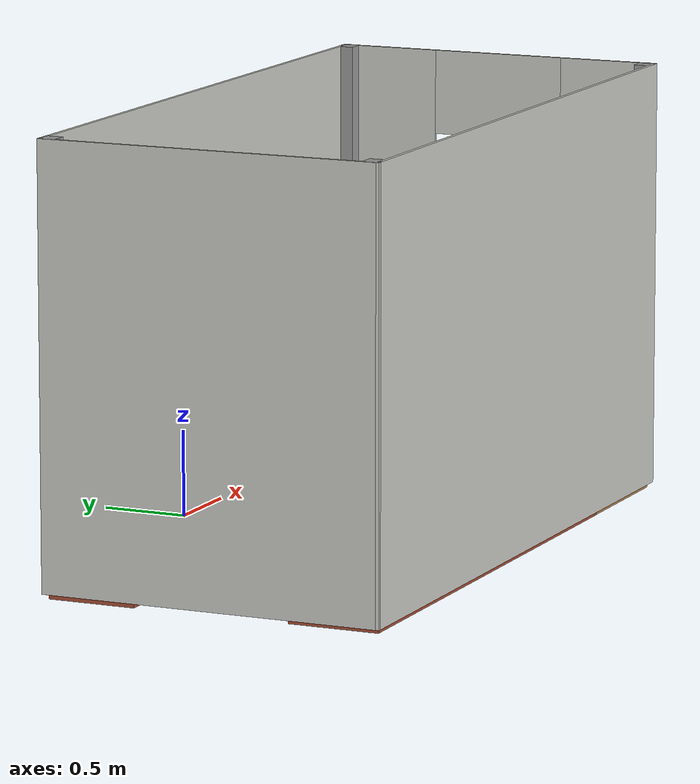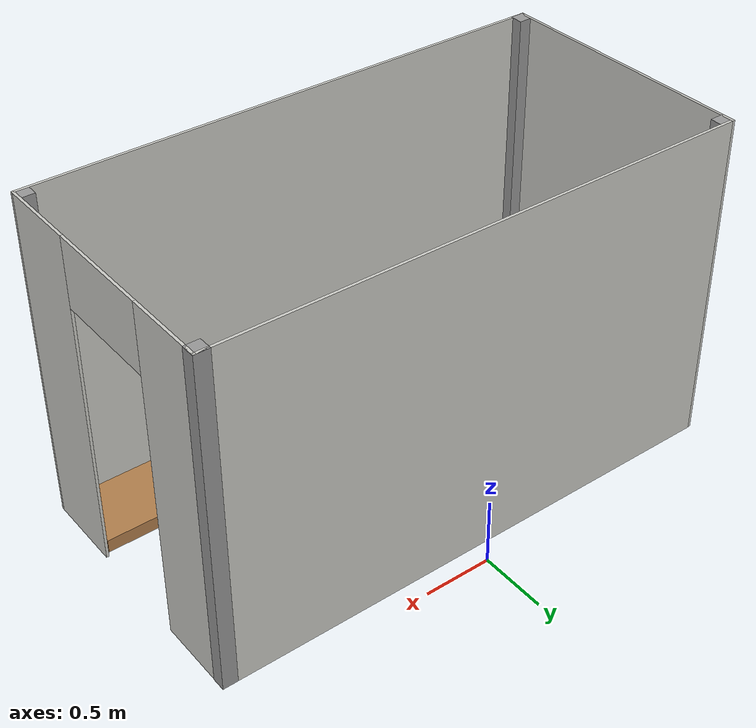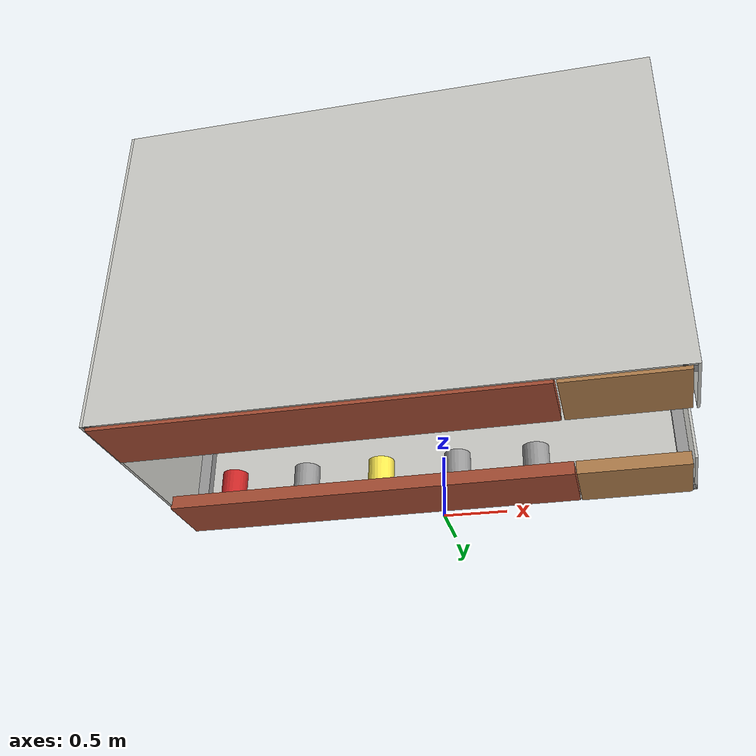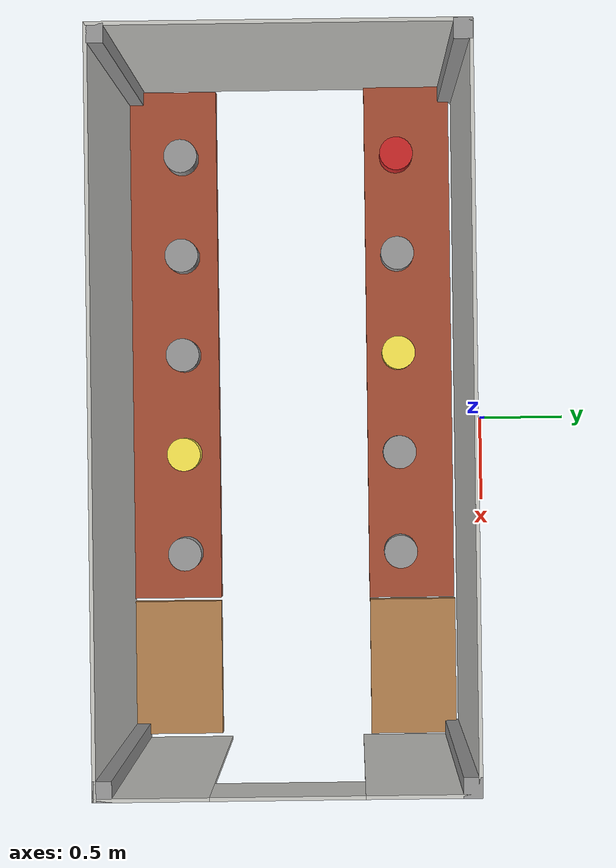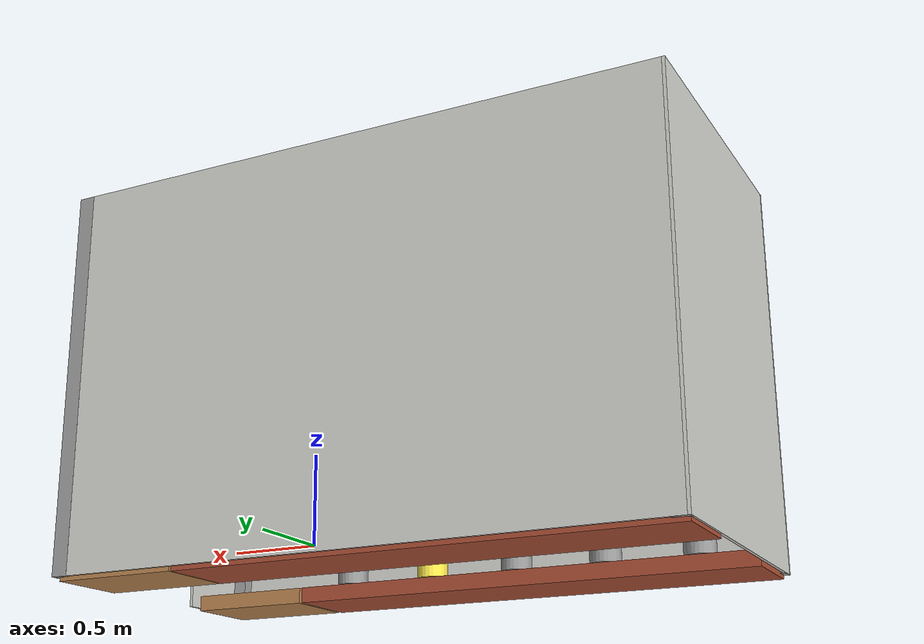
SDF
<?xml version='1.0'?>
<sdf version='1.7'>
  <model name='Greenhouse'>
    <link name='Wall_0'>
      <pose>-0.048 -0.148439 0 0 -0 0</pose>
      <self_collide>0</self_collide>
      <enable_wind>0</enable_wind>
      <kinematic>0</kinematic>
      <visual name='Wall_0_Visual'>
        <pose>0 0 1.25 0 -0 0</pose>
        <geometry>
          <box>
            <size>4 0.02 2.5</size>
          </box>
        </geometry>
        <material>
          <script>
            <uri>file://media/materials/scripts/gazebo.material</uri>
            <name>Gazebo/CeilingTiled</name>
          </script>
          <ambient>1 1 1 1</ambient>
          <shader type='pixel'/>
        </material>
        <meta>
          <layer>0</layer>
        </meta>
        <transparency>0</transparency>
        <cast_shadows>1</cast_shadows>
      </visual>
      <collision name='Wall_0_Collision'>
        <laser_retro>0</laser_retro>
        <max_contacts>10</max_contacts>
        <pose>0 0 1.25 0 -0 0</pose>
        <geometry>
          <box>
            <size>4 0.02 2.5</size>
          </box>
        </geometry>
        <surface>
          <friction>
            <ode>
              <mu>1</mu>
              <mu2>1</mu2>
              <fdir1>0 0 0</fdir1>
              <slip1>0</slip1>
              <slip2>0</slip2>
            </ode>
            <torsional>
              <coefficient>1</coefficient>
              <patch_radius>0</patch_radius>
              <surface_radius>0</surface_radius>
              <use_patch_radius>1</use_patch_radius>
              <ode>
                <slip>0</slip>
              </ode>
            </torsional>
          </friction>
          <bounce>
            <restitution_coefficient>0</restitution_coefficient>
            <threshold>1e+06</threshold>
          </bounce>
          <contact>
            <collide_without_contact>0</collide_without_contact>
            <collide_without_contact_bitmask>1</collide_without_contact_bitmask>
            <collide_bitmask>1</collide_bitmask>
            <ode>
              <soft_cfm>0</soft_cfm>
              <soft_erp>0.2</soft_erp>
              <kp>1e+13</kp>
              <kd>1</kd>
              <max_vel>0.01</max_vel>
              <min_depth>0</min_depth>
            </ode>
            <bullet>
              <split_impulse>1</split_impulse>
              <split_impulse_penetration_threshold>-0.01</split_impulse_penetration_threshold>
              <soft_cfm>0</soft_cfm>
              <soft_erp>0.2</soft_erp>
              <kp>1e+13</kp>
              <kd>1</kd>
            </bullet>
          </contact>
        </surface>
      </collision>
    </link>
    <link name='Wall_1'>
      <pose>1.942 -1.13844 0 0 0 -1.5708</pose>
      <self_collide>0</self_collide>
      <enable_wind>0</enable_wind>
      <kinematic>0</kinematic>
      <visual name='Wall_1_Visual_1'>
        <pose>0.699876 0 1.25 0 -0 0</pose>
        <geometry>
          <box>
            <size>0.600248 0.02 2.5</size>
          </box>
        </geometry>
        <material>
          <script>
            <uri>file://media/materials/scripts/gazebo.material</uri>
            <name>Gazebo/CeilingTiled</name>
          </script>
          <ambient>1 1 1 1</ambient>
          <shader type='pixel'/>
        </material>
        <meta>
          <layer>0</layer>
        </meta>
        <transparency>0</transparency>
        <cast_shadows>1</cast_shadows>
      </visual>
      <visual name='Wall_1_Visual_2'>
        <pose>-0.000248 0 2.25 0 -0 0</pose>
        <geometry>
          <box>
            <size>0.8 0.02 0.5</size>
          </box>
        </geometry>
        <material>
          <script>
            <uri>file://media/materials/scripts/gazebo.material</uri>
            <name>Gazebo/CeilingTiled</name>
          </script>
          <ambient>1 1 1 1</ambient>
          <shader type='pixel'/>
        </material>
        <meta>
          <layer>0</layer>
        </meta>
        <transparency>0</transparency>
        <cast_shadows>1</cast_shadows>
      </visual>
      <visual name='Wall_1_Visual_0'>
        <pose>-0.700124 0 1.25 0 -0 0</pose>
        <geometry>
          <box>
            <size>0.599752 0.02 2.5</size>
          </box>
        </geometry>
        <material>
          <script>
            <uri>file://media/materials/scripts/gazebo.material</uri>
            <name>Gazebo/CeilingTiled</name>
          </script>
          <ambient>1 1 1 1</ambient>
          <shader type='pixel'/>
        </material>
        <meta>
          <layer>0</layer>
        </meta>
        <transparency>0</transparency>
        <cast_shadows>1</cast_shadows>
      </visual>
      <collision name='Wall_1_Collision_0'>
        <laser_retro>0</laser_retro>
        <max_contacts>10</max_contacts>
        <pose>-0.700124 0 1.25 0 -0 0</pose>
        <geometry>
          <box>
            <size>0.599752 0.02 2.5</size>
          </box>
        </geometry>
        <surface>
          <friction>
            <ode>
              <mu>1</mu>
              <mu2>1</mu2>
              <fdir1>0 0 0</fdir1>
              <slip1>0</slip1>
              <slip2>0</slip2>
            </ode>
            <torsional>
              <coefficient>1</coefficient>
              <patch_radius>0</patch_radius>
              <surface_radius>0</surface_radius>
              <use_patch_radius>1</use_patch_radius>
              <ode>
                <slip>0</slip>
              </ode>
            </torsional>
          </friction>
          <bounce>
            <restitution_coefficient>0</restitution_coefficient>
            <threshold>1e+06</threshold>
          </bounce>
          <contact>
            <collide_without_contact>0</collide_without_contact>
            <collide_without_contact_bitmask>1</collide_without_contact_bitmask>
            <collide_bitmask>1</collide_bitmask>
            <ode>
              <soft_cfm>0</soft_cfm>
              <soft_erp>0.2</soft_erp>
              <kp>1e+13</kp>
              <kd>1</kd>
              <max_vel>0.01</max_vel>
              <min_depth>0</min_depth>
            </ode>
            <bullet>
              <split_impulse>1</split_impulse>
              <split_impulse_penetration_threshold>-0.01</split_impulse_penetration_threshold>
              <soft_cfm>0</soft_cfm>
              <soft_erp>0.2</soft_erp>
              <kp>1e+13</kp>
              <kd>1</kd>
            </bullet>
          </contact>
        </surface>
      </collision>
      <collision name='Wall_1_Collision_1'>
        <laser_retro>0</laser_retro>
        <max_contacts>10</max_contacts>
        <pose>0.699876 0 1.25 0 -0 0</pose>
        <geometry>
          <box>
            <size>0.600248 0.02 2.5</size>
          </box>
        </geometry>
        <surface>
          <friction>
            <ode>
              <mu>1</mu>
              <mu2>1</mu2>
              <fdir1>0 0 0</fdir1>
              <slip1>0</slip1>
              <slip2>0</slip2>
            </ode>
            <torsional>
              <coefficient>1</coefficient>
              <patch_radius>0</patch_radius>
              <surface_radius>0</surface_radius>
              <use_patch_radius>1</use_patch_radius>
              <ode>
                <slip>0</slip>
              </ode>
            </torsional>
          </friction>
          <bounce>
            <restitution_coefficient>0</restitution_coefficient>
            <threshold>1e+06</threshold>
          </bounce>
          <contact>
            <collide_without_contact>0</collide_without_contact>
            <collide_without_contact_bitmask>1</collide_without_contact_bitmask>
            <collide_bitmask>1</collide_bitmask>
            <ode>
              <soft_cfm>0</soft_cfm>
              <soft_erp>0.2</soft_erp>
              <kp>1e+13</kp>
              <kd>1</kd>
              <max_vel>0.01</max_vel>
              <min_depth>0</min_depth>
            </ode>
            <bullet>
              <split_impulse>1</split_impulse>
              <split_impulse_penetration_threshold>-0.01</split_impulse_penetration_threshold>
              <soft_cfm>0</soft_cfm>
              <soft_erp>0.2</soft_erp>
              <kp>1e+13</kp>
              <kd>1</kd>
            </bullet>
          </contact>
        </surface>
      </collision>
      <collision name='Wall_1_Collision_2'>
        <laser_retro>0</laser_retro>
        <max_contacts>10</max_contacts>
        <pose>-0.000248 0 2.25 0 -0 0</pose>
        <geometry>
          <box>
            <size>0.8 0.02 0.5</size>
          </box>
        </geometry>
        <surface>
          <friction>
            <ode>
              <mu>1</mu>
              <mu2>1</mu2>
              <fdir1>0 0 0</fdir1>
              <slip1>0</slip1>
              <slip2>0</slip2>
            </ode>
            <torsional>
              <coefficient>1</coefficient>
              <patch_radius>0</patch_radius>
              <surface_radius>0</surface_radius>
              <use_patch_radius>1</use_patch_radius>
              <ode>
                <slip>0</slip>
              </ode>
            </torsional>
          </friction>
          <bounce>
            <restitution_coefficient>0</restitution_coefficient>
            <threshold>1e+06</threshold>
          </bounce>
          <contact>
            <collide_without_contact>0</collide_without_contact>
            <collide_without_contact_bitmask>1</collide_without_contact_bitmask>
            <collide_bitmask>1</collide_bitmask>
            <ode>
              <soft_cfm>0</soft_cfm>
              <soft_erp>0.2</soft_erp>
              <kp>1e+13</kp>
              <kd>1</kd>
              <max_vel>0.01</max_vel>
              <min_depth>0</min_depth>
            </ode>
            <bullet>
              <split_impulse>1</split_impulse>
              <split_impulse_penetration_threshold>-0.01</split_impulse_penetration_threshold>
              <soft_cfm>0</soft_cfm>
              <soft_erp>0.2</soft_erp>
              <kp>1e+13</kp>
              <kd>1</kd>
            </bullet>
          </contact>
        </surface>
      </collision>
    </link>
    <link name='Wall_18'>
      <pose>-0.468315 -1.85777 0 0 -0 3.14159</pose>
      <self_collide>0</self_collide>
      <enable_wind>0</enable_wind>
      <kinematic>0</kinematic>
      <gravity>1</gravity>
      <inertial>
        <mass>0.836289</mass>
        <pose>0 0 0 0 -0 0</pose>
        <inertia>
          <ixx>0.0201198</ixx>
          <ixy>0</ixy>
          <ixz>0</ixz>
          <iyy>0.665601</iyy>
          <iyz>0</iyz>
          <izz>0.684327</izz>
        </inertia>
      </inertial>
      <visual name='Wall_18_Visual'>
        <pose>0 0 0.025 0 -0 0</pose>
        <geometry>
          <box>
            <size>3.08881 0.527921 0.1</size>
          </box>
        </geometry>
        <material>
          <script>
            <uri>file://media/materials/scripts/gazebo.material</uri>
            <name>Gazebo/Bricks</name>
          </script>
          <ambient>0.996 0.475 0.02 1</ambient>
          <shader type='pixel'>
            <normal_map>__default__</normal_map>
          </shader>
          <diffuse>1 1 1 1</diffuse>
          <specular>0.2 0.2 0.2 1</specular>
          <emissive>0 0 0 1</emissive>
        </material>
        <meta>
          <layer>0</layer>
        </meta>
        <transparency>0</transparency>
        <cast_shadows>1</cast_shadows>
      </visual>
      <collision name='Wall_18_Collision'>
        <laser_retro>0</laser_retro>
        <max_contacts>10</max_contacts>
        <pose>0 0 0.025 0 -0 0</pose>
        <geometry>
          <box>
            <size>3.08881 0.527921 0.1</size>
          </box>
        </geometry>
        <surface>
          <friction>
            <ode>
              <mu>1</mu>
              <mu2>1</mu2>
              <fdir1>0 0 0</fdir1>
              <slip1>0</slip1>
              <slip2>0</slip2>
            </ode>
            <torsional>
              <coefficient>1</coefficient>
              <patch_radius>0</patch_radius>
              <surface_radius>0</surface_radius>
              <use_patch_radius>1</use_patch_radius>
              <ode>
                <slip>0</slip>
              </ode>
            </torsional>
          </friction>
          <bounce>
            <restitution_coefficient>0</restitution_coefficient>
            <threshold>1e+06</threshold>
          </bounce>
          <contact>
            <collide_without_contact>0</collide_without_contact>
            <collide_without_contact_bitmask>1</collide_without_contact_bitmask>
            <collide_bitmask>1</collide_bitmask>
            <ode>
              <soft_cfm>0</soft_cfm>
              <soft_erp>0.2</soft_erp>
              <kp>1e+13</kp>
              <kd>1</kd>
              <max_vel>0.01</max_vel>
              <min_depth>0</min_depth>
            </ode>
            <bullet>
              <split_impulse>1</split_impulse>
              <split_impulse_penetration_threshold>-0.01</split_impulse_penetration_threshold>
              <soft_cfm>0</soft_cfm>
              <soft_erp>0.2</soft_erp>
              <kp>1e+13</kp>
              <kd>1</kd>
            </bullet>
          </contact>
        </surface>
      </collision>
    </link>
    <link name='Wall_2'>
      <pose>-0.048 -2.12844 0 0 -0 3.14159</pose>
      <self_collide>0</self_collide>
      <enable_wind>0</enable_wind>
      <kinematic>0</kinematic>
      <visual name='Wall_2_Visual'>
        <pose>0 0 1.25 0 -0 0</pose>
        <geometry>
          <box>
            <size>4 0.02 2.5</size>
          </box>
        </geometry>
        <material>
          <script>
            <uri>file://media/materials/scripts/gazebo.material</uri>
            <name>Gazebo/CeilingTiled</name>
          </script>
          <ambient>1 1 1 1</ambient>
          <shader type='pixel'/>
        </material>
        <meta>
          <layer>0</layer>
        </meta>
        <transparency>0</transparency>
        <cast_shadows>1</cast_shadows>
      </visual>
      <collision name='Wall_2_Collision'>
        <laser_retro>0</laser_retro>
        <max_contacts>10</max_contacts>
        <pose>0 0 1.25 0 -0 0</pose>
        <geometry>
          <box>
            <size>4 0.02 2.5</size>
          </box>
        </geometry>
        <surface>
          <friction>
            <ode>
              <mu>1</mu>
              <mu2>1</mu2>
              <fdir1>0 0 0</fdir1>
              <slip1>0</slip1>
              <slip2>0</slip2>
            </ode>
            <torsional>
              <coefficient>1</coefficient>
              <patch_radius>0</patch_radius>
              <surface_radius>0</surface_radius>
              <use_patch_radius>1</use_patch_radius>
              <ode>
                <slip>0</slip>
              </ode>
            </torsional>
          </friction>
          <bounce>
            <restitution_coefficient>0</restitution_coefficient>
            <threshold>1e+06</threshold>
          </bounce>
          <contact>
            <collide_without_contact>0</collide_without_contact>
            <collide_without_contact_bitmask>1</collide_without_contact_bitmask>
            <collide_bitmask>1</collide_bitmask>
            <ode>
              <soft_cfm>0</soft_cfm>
              <soft_erp>0.2</soft_erp>
              <kp>1e+13</kp>
              <kd>1</kd>
              <max_vel>0.01</max_vel>
              <min_depth>0</min_depth>
            </ode>
            <bullet>
              <split_impulse>1</split_impulse>
              <split_impulse_penetration_threshold>-0.01</split_impulse_penetration_threshold>
              <soft_cfm>0</soft_cfm>
              <soft_erp>0.2</soft_erp>
              <kp>1e+13</kp>
              <kd>1</kd>
            </bullet>
          </contact>
        </surface>
      </collision>
    </link>
    <link name='Wall_20'>
      <pose>-0.474215 -0.432825 0 0 -0 3.14159</pose>
      <self_collide>0</self_collide>
      <enable_wind>0</enable_wind>
      <kinematic>0</kinematic>
      <gravity>1</gravity>
      <inertial>
        <mass>0.824884</mass>
        <pose>0 0 0 0 -0 0</pose>
        <inertia>
          <ixx>0.0189166</ixx>
          <ixy>0</ixy>
          <ixz>0</ixz>
          <iyy>0.671272</iyy>
          <iyz>0</iyz>
          <izz>0.688814</izz>
        </inertia>
      </inertial>
      <visual name='Wall_20_Visual'>
        <pose>0 0 0.025 0 -0 0</pose>
        <geometry>
          <box>
            <size>3.12335 0.514965 0.1</size>
          </box>
        </geometry>
        <material>
          <script>
            <uri>file://media/materials/scripts/gazebo.material</uri>
            <name>Gazebo/Bricks</name>
          </script>
          <ambient>1 1 1 1</ambient>
          <shader type='pixel'>
            <normal_map>__default__</normal_map>
          </shader>
          <diffuse>1 1 1 1</diffuse>
          <specular>0.2 0.2 0.2 1</specular>
          <emissive>0 0 0 1</emissive>
        </material>
        <meta>
          <layer>0</layer>
        </meta>
        <transparency>0</transparency>
        <cast_shadows>1</cast_shadows>
      </visual>
      <collision name='Wall_20_Collision'>
        <laser_retro>0</laser_retro>
        <max_contacts>10</max_contacts>
        <pose>0 0 0.025 0 -0 0</pose>
        <geometry>
          <box>
            <size>3.12335 0.514965 0.1</size>
          </box>
        </geometry>
        <surface>
          <friction>
            <ode>
              <mu>1</mu>
              <mu2>1</mu2>
              <fdir1>0 0 0</fdir1>
              <slip1>0</slip1>
              <slip2>0</slip2>
            </ode>
            <torsional>
              <coefficient>1</coefficient>
              <patch_radius>0</patch_radius>
              <surface_radius>0</surface_radius>
              <use_patch_radius>1</use_patch_radius>
              <ode>
                <slip>0</slip>
              </ode>
            </torsional>
          </friction>
          <bounce>
            <restitution_coefficient>0</restitution_coefficient>
            <threshold>1e+06</threshold>
          </bounce>
          <contact>
            <collide_without_contact>0</collide_without_contact>
            <collide_without_contact_bitmask>1</collide_without_contact_bitmask>
            <collide_bitmask>1</collide_bitmask>
            <ode>
              <soft_cfm>0</soft_cfm>
              <soft_erp>0.2</soft_erp>
              <kp>1e+13</kp>
              <kd>1</kd>
              <max_vel>0.01</max_vel>
              <min_depth>0</min_depth>
            </ode>
            <bullet>
              <split_impulse>1</split_impulse>
              <split_impulse_penetration_threshold>-0.01</split_impulse_penetration_threshold>
              <soft_cfm>0</soft_cfm>
              <soft_erp>0.2</soft_erp>
              <kp>1e+13</kp>
              <kd>1</kd>
            </bullet>
          </contact>
        </surface>
      </collision>
    </link>
    <link name='Wall_22'>
      <pose>1.508 -0.428972 0 0 -0 3.14159</pose>
      <self_collide>0</self_collide>
      <enable_wind>0</enable_wind>
      <kinematic>0</kinematic>
      <gravity>1</gravity>
      <inertial>
        <mass>0.98097</mass>
        <pose>0 0 0 0 -0 0</pose>
        <inertia>
          <ixx>0.0227787</ixx>
          <ixy>0</ixy>
          <ixz>0</ixz>
          <iyy>0.0554978</iyy>
          <iyz>0</iyz>
          <izz>0.0766416</izz>
        </inertia>
      </inertial>
      <visual name='Wall_22_Visual'>
        <pose>0 0 0.025 0 -0 0</pose>
        <geometry>
          <box>
            <size>0.817859 0.518312 0.1</size>
          </box>
        </geometry>
        <material>
          <script>
            <uri>file://media/materials/scripts/gazebo.material</uri>
            <name>Gazebo/Wood</name>
          </script>
          <ambient>1 1 1 1</ambient>
          <shader type='pixel'>
            <normal_map>__default__</normal_map>
          </shader>
          <diffuse>1 1 1 1</diffuse>
          <specular>0.2 0.2 0.2 1</specular>
          <emissive>0 0 0 1</emissive>
        </material>
        <meta>
          <layer>0</layer>
        </meta>
        <transparency>0</transparency>
        <cast_shadows>1</cast_shadows>
      </visual>
      <collision name='Wall_22_Collision'>
        <laser_retro>0</laser_retro>
        <max_contacts>10</max_contacts>
        <pose>0 0 0.025 0 -0 0</pose>
        <geometry>
          <box>
            <size>0.817859 0.518312 0.1</size>
          </box>
        </geometry>
        <surface>
          <friction>
            <ode>
              <mu>1</mu>
              <mu2>1</mu2>
              <fdir1>0 0 0</fdir1>
              <slip1>0</slip1>
              <slip2>0</slip2>
            </ode>
            <torsional>
              <coefficient>1</coefficient>
              <patch_radius>0</patch_radius>
              <surface_radius>0</surface_radius>
              <use_patch_radius>1</use_patch_radius>
              <ode>
                <slip>0</slip>
              </ode>
            </torsional>
          </friction>
          <bounce>
            <restitution_coefficient>0</restitution_coefficient>
            <threshold>1e+06</threshold>
          </bounce>
          <contact>
            <collide_without_contact>0</collide_without_contact>
            <collide_without_contact_bitmask>1</collide_without_contact_bitmask>
            <collide_bitmask>1</collide_bitmask>
            <ode>
              <soft_cfm>0</soft_cfm>
              <soft_erp>0.2</soft_erp>
              <kp>1e+13</kp>
              <kd>1</kd>
              <max_vel>0.01</max_vel>
              <min_depth>0</min_depth>
            </ode>
            <bullet>
              <split_impulse>1</split_impulse>
              <split_impulse_penetration_threshold>-0.01</split_impulse_penetration_threshold>
              <soft_cfm>0</soft_cfm>
              <soft_erp>0.2</soft_erp>
              <kp>1e+13</kp>
              <kd>1</kd>
            </bullet>
          </contact>
        </surface>
      </collision>
    </link>
    <link name='Wall_3'>
      <pose>-2.038 -1.13844 0 0 -0 1.5708</pose>
      <self_collide>0</self_collide>
      <enable_wind>0</enable_wind>
      <kinematic>0</kinematic>
      <visual name='Wall_3_Visual'>
        <pose>0 0 1.25 0 -0 0</pose>
        <geometry>
          <box>
            <size>2.00024 0.02 2.5</size>
          </box>
        </geometry>
        <material>
          <script>
            <uri>file://media/materials/scripts/gazebo.material</uri>
            <name>Gazebo/CeilingTiled</name>
          </script>
          <ambient>1 1 1 1</ambient>
          <shader type='pixel'/>
        </material>
        <meta>
          <layer>0</layer>
        </meta>
        <transparency>0</transparency>
        <cast_shadows>1</cast_shadows>
      </visual>
      <collision name='Wall_3_Collision'>
        <laser_retro>0</laser_retro>
        <max_contacts>10</max_contacts>
        <pose>0 0 1.25 0 -0 0</pose>
        <geometry>
          <box>
            <size>2.00024 0.02 2.5</size>
          </box>
        </geometry>
        <surface>
          <friction>
            <ode>
              <mu>1</mu>
              <mu2>1</mu2>
              <fdir1>0 0 0</fdir1>
              <slip1>0</slip1>
              <slip2>0</slip2>
            </ode>
            <torsional>
              <coefficient>1</coefficient>
              <patch_radius>0</patch_radius>
              <surface_radius>0</surface_radius>
              <use_patch_radius>1</use_patch_radius>
              <ode>
                <slip>0</slip>
              </ode>
            </torsional>
          </friction>
          <bounce>
            <restitution_coefficient>0</restitution_coefficient>
            <threshold>1e+06</threshold>
          </bounce>
          <contact>
            <collide_without_contact>0</collide_without_contact>
            <collide_without_contact_bitmask>1</collide_without_contact_bitmask>
            <collide_bitmask>1</collide_bitmask>
            <ode>
              <soft_cfm>0</soft_cfm>
              <soft_erp>0.2</soft_erp>
              <kp>1e+13</kp>
              <kd>1</kd>
              <max_vel>0.01</max_vel>
              <min_depth>0</min_depth>
            </ode>
            <bullet>
              <split_impulse>1</split_impulse>
              <split_impulse_penetration_threshold>-0.01</split_impulse_penetration_threshold>
              <soft_cfm>0</soft_cfm>
              <soft_erp>0.2</soft_erp>
              <kp>1e+13</kp>
              <kd>1</kd>
            </bullet>
          </contact>
        </surface>
      </collision>
    </link>
    <link name='Wall_30'>
      <pose>-1.99166 -2.0858 0 0 -0 0</pose>
      <self_collide>0</self_collide>
      <enable_wind>0</enable_wind>
      <kinematic>0</kinematic>
      <visual name='Wall_30_Visual'>
        <pose>0 0 1.25 0 -0 0</pose>
        <geometry>
          <box>
            <size>0.11 0.1 2.5</size>
          </box>
        </geometry>
        <material>
          <script>
            <uri>file://media/materials/scripts/gazebo.material</uri>
            <name>Gazebo/Grey</name>
          </script>
          <ambient>0.333333 0.341176 0.32549 1</ambient>
          <shader type='pixel'/>
        </material>
        <meta>
          <layer>0</layer>
        </meta>
        <transparency>0</transparency>
        <cast_shadows>1</cast_shadows>
      </visual>
      <collision name='Wall_30_Collision'>
        <laser_retro>0</laser_retro>
        <max_contacts>10</max_contacts>
        <pose>0 0 1.25 0 -0 0</pose>
        <geometry>
          <box>
            <size>0.11 0.1 2.5</size>
          </box>
        </geometry>
        <surface>
          <friction>
            <ode>
              <mu>1</mu>
              <mu2>1</mu2>
              <fdir1>0 0 0</fdir1>
              <slip1>0</slip1>
              <slip2>0</slip2>
            </ode>
            <torsional>
              <coefficient>1</coefficient>
              <patch_radius>0</patch_radius>
              <surface_radius>0</surface_radius>
              <use_patch_radius>1</use_patch_radius>
              <ode>
                <slip>0</slip>
              </ode>
            </torsional>
          </friction>
          <bounce>
            <restitution_coefficient>0</restitution_coefficient>
            <threshold>1e+06</threshold>
          </bounce>
          <contact>
            <collide_without_contact>0</collide_without_contact>
            <collide_without_contact_bitmask>1</collide_without_contact_bitmask>
            <collide_bitmask>1</collide_bitmask>
            <ode>
              <soft_cfm>0</soft_cfm>
              <soft_erp>0.2</soft_erp>
              <kp>1e+13</kp>
              <kd>1</kd>
              <max_vel>0.01</max_vel>
              <min_depth>0</min_depth>
            </ode>
            <bullet>
              <split_impulse>1</split_impulse>
              <split_impulse_penetration_threshold>-0.01</split_impulse_penetration_threshold>
              <soft_cfm>0</soft_cfm>
              <soft_erp>0.2</soft_erp>
              <kp>1e+13</kp>
              <kd>1</kd>
            </bullet>
          </contact>
        </surface>
      </collision>
    </link>
    <link name='Wall_32'>
      <pose>1.89691 -2.08694 0 0 -0 0</pose>
      <self_collide>0</self_collide>
      <enable_wind>0</enable_wind>
      <kinematic>0</kinematic>
      <visual name='Wall_32_Visual'>
        <pose>0 0 1.25 0 -0 0</pose>
        <geometry>
          <box>
            <size>0.11 0.1 2.5</size>
          </box>
        </geometry>
        <material>
          <script>
            <uri>file://media/materials/scripts/gazebo.material</uri>
            <name>Gazebo/Grey</name>
          </script>
          <ambient>0.333333 0.341176 0.32549 1</ambient>
          <shader type='pixel'/>
        </material>
        <meta>
          <layer>0</layer>
        </meta>
        <transparency>0</transparency>
        <cast_shadows>1</cast_shadows>
      </visual>
      <collision name='Wall_32_Collision'>
        <laser_retro>0</laser_retro>
        <max_contacts>10</max_contacts>
        <pose>0 0 1.25 0 -0 0</pose>
        <geometry>
          <box>
            <size>0.11 0.1 2.5</size>
          </box>
        </geometry>
        <surface>
          <friction>
            <ode>
              <mu>1</mu>
              <mu2>1</mu2>
              <fdir1>0 0 0</fdir1>
              <slip1>0</slip1>
              <slip2>0</slip2>
            </ode>
            <torsional>
              <coefficient>1</coefficient>
              <patch_radius>0</patch_radius>
              <surface_radius>0</surface_radius>
              <use_patch_radius>1</use_patch_radius>
              <ode>
                <slip>0</slip>
              </ode>
            </torsional>
          </friction>
          <bounce>
            <restitution_coefficient>0</restitution_coefficient>
            <threshold>1e+06</threshold>
          </bounce>
          <contact>
            <collide_without_contact>0</collide_without_contact>
            <collide_without_contact_bitmask>1</collide_without_contact_bitmask>
            <collide_bitmask>1</collide_bitmask>
            <ode>
              <soft_cfm>0</soft_cfm>
              <soft_erp>0.2</soft_erp>
              <kp>1e+13</kp>
              <kd>1</kd>
              <max_vel>0.01</max_vel>
              <min_depth>0</min_depth>
            </ode>
            <bullet>
              <split_impulse>1</split_impulse>
              <split_impulse_penetration_threshold>-0.01</split_impulse_penetration_threshold>
              <soft_cfm>0</soft_cfm>
              <soft_erp>0.2</soft_erp>
              <kp>1e+13</kp>
              <kd>1</kd>
            </bullet>
          </contact>
        </surface>
      </collision>
    </link>
    <link name='Wall_34'>
      <pose>1.50033 -1.85782 0 0 -0 3.14159</pose>
      <self_collide>0</self_collide>
      <enable_wind>0</enable_wind>
      <kinematic>0</kinematic>
      <gravity>1</gravity>
      <inertial>
        <mass>0.976063</mass>
        <pose>0 0 0 0 -0 0</pose>
        <inertia>
          <ixx>0.0230572</ixx>
          <ixy>0</ixy>
          <ixz>0</ixz>
          <iyy>0.0536994</iyy>
          <iyz>0</iyz>
          <izz>0.0751298</izz>
        </inertia>
      </inertial>
      <visual name='Wall_34_Visual'>
        <pose>0 0 0.025 0 -0 0</pose>
        <geometry>
          <box>
            <size>0.806347 0.522945 0.1</size>
          </box>
        </geometry>
        <material>
          <script>
            <uri>file://media/materials/scripts/gazebo.material</uri>
            <name>Gazebo/Wood</name>
          </script>
          <ambient>1 1 1 1</ambient>
          <shader type='pixel'>
            <normal_map>__default__</normal_map>
          </shader>
          <diffuse>1 1 1 1</diffuse>
          <specular>0.2 0.2 0.2 1</specular>
          <emissive>0 0 0 1</emissive>
        </material>
        <meta>
          <layer>0</layer>
        </meta>
        <transparency>0</transparency>
        <cast_shadows>1</cast_shadows>
      </visual>
      <collision name='Wall_34_Collision'>
        <laser_retro>0</laser_retro>
        <max_contacts>10</max_contacts>
        <pose>0 0 0.025 0 -0 0</pose>
        <geometry>
          <box>
            <size>0.806347 0.522945 0.1</size>
          </box>
        </geometry>
        <surface>
          <friction>
            <ode>
              <mu>1</mu>
              <mu2>1</mu2>
              <fdir1>0 0 0</fdir1>
              <slip1>0</slip1>
              <slip2>0</slip2>
            </ode>
            <torsional>
              <coefficient>1</coefficient>
              <patch_radius>0</patch_radius>
              <surface_radius>0</surface_radius>
              <use_patch_radius>1</use_patch_radius>
              <ode>
                <slip>0</slip>
              </ode>
            </torsional>
          </friction>
          <bounce>
            <restitution_coefficient>0</restitution_coefficient>
            <threshold>1e+06</threshold>
          </bounce>
          <contact>
            <collide_without_contact>0</collide_without_contact>
            <collide_without_contact_bitmask>1</collide_without_contact_bitmask>
            <collide_bitmask>1</collide_bitmask>
            <ode>
              <soft_cfm>0</soft_cfm>
              <soft_erp>0.2</soft_erp>
              <kp>1e+13</kp>
              <kd>1</kd>
              <max_vel>0.01</max_vel>
              <min_depth>0</min_depth>
            </ode>
            <bullet>
              <split_impulse>1</split_impulse>
              <split_impulse_penetration_threshold>-0.01</split_impulse_penetration_threshold>
              <soft_cfm>0</soft_cfm>
              <soft_erp>0.2</soft_erp>
              <kp>1e+13</kp>
              <kd>1</kd>
            </bullet>
          </contact>
        </surface>
      </collision>
    </link>
    <link name='Wall_36'>
      <pose>-1.99157 -0.189584 0 0 -0 0</pose>
      <self_collide>0</self_collide>
      <enable_wind>0</enable_wind>
      <kinematic>0</kinematic>
      <visual name='Wall_36_Visual'>
        <pose>0 0 1.25 0 -0 0</pose>
        <geometry>
          <box>
            <size>0.11 0.1 2.5</size>
          </box>
        </geometry>
        <material>
          <script>
            <uri>file://media/materials/scripts/gazebo.material</uri>
            <name>Gazebo/Grey</name>
          </script>
          <ambient>0.333333 0.341176 0.32549 1</ambient>
          <shader type='pixel'/>
        </material>
        <meta>
          <layer>0</layer>
        </meta>
        <transparency>0</transparency>
        <cast_shadows>1</cast_shadows>
      </visual>
      <collision name='Wall_36_Collision'>
        <laser_retro>0</laser_retro>
        <max_contacts>10</max_contacts>
        <pose>0 0 1.25 0 -0 0</pose>
        <geometry>
          <box>
            <size>0.11 0.1 2.5</size>
          </box>
        </geometry>
        <surface>
          <friction>
            <ode>
              <mu>1</mu>
              <mu2>1</mu2>
              <fdir1>0 0 0</fdir1>
              <slip1>0</slip1>
              <slip2>0</slip2>
            </ode>
            <torsional>
              <coefficient>1</coefficient>
              <patch_radius>0</patch_radius>
              <surface_radius>0</surface_radius>
              <use_patch_radius>1</use_patch_radius>
              <ode>
                <slip>0</slip>
              </ode>
            </torsional>
          </friction>
          <bounce>
            <restitution_coefficient>0</restitution_coefficient>
            <threshold>1e+06</threshold>
          </bounce>
          <contact>
            <collide_without_contact>0</collide_without_contact>
            <collide_without_contact_bitmask>1</collide_without_contact_bitmask>
            <collide_bitmask>1</collide_bitmask>
            <ode>
              <soft_cfm>0</soft_cfm>
              <soft_erp>0.2</soft_erp>
              <kp>1e+13</kp>
              <kd>1</kd>
              <max_vel>0.01</max_vel>
              <min_depth>0</min_depth>
            </ode>
            <bullet>
              <split_impulse>1</split_impulse>
              <split_impulse_penetration_threshold>-0.01</split_impulse_penetration_threshold>
              <soft_cfm>0</soft_cfm>
              <soft_erp>0.2</soft_erp>
              <kp>1e+13</kp>
              <kd>1</kd>
            </bullet>
          </contact>
        </surface>
      </collision>
    </link>
    <link name='Wall_40'>
      <pose>1.89912 -0.187869 0 0 -0 0</pose>
      <self_collide>0</self_collide>
      <enable_wind>0</enable_wind>
      <kinematic>0</kinematic>
      <visual name='Wall_40_Visual'>
        <pose>0 0 1.25 0 -0 0</pose>
        <geometry>
          <box>
            <size>0.11 0.1 2.5</size>
          </box>
        </geometry>
        <material>
          <script>
            <uri>file://media/materials/scripts/gazebo.material</uri>
            <name>Gazebo/Grey</name>
          </script>
          <ambient>0.333333 0.341176 0.32549 1</ambient>
          <shader type='pixel'/>
        </material>
        <meta>
          <layer>0</layer>
        </meta>
        <transparency>0</transparency>
        <cast_shadows>1</cast_shadows>
      </visual>
      <collision name='Wall_40_Collision'>
        <laser_retro>0</laser_retro>
        <max_contacts>10</max_contacts>
        <pose>0 0 1.25 0 -0 0</pose>
        <geometry>
          <box>
            <size>0.11 0.1 2.5</size>
          </box>
        </geometry>
        <surface>
          <friction>
            <ode>
              <mu>1</mu>
              <mu2>1</mu2>
              <fdir1>0 0 0</fdir1>
              <slip1>0</slip1>
              <slip2>0</slip2>
            </ode>
            <torsional>
              <coefficient>1</coefficient>
              <patch_radius>0</patch_radius>
              <surface_radius>0</surface_radius>
              <use_patch_radius>1</use_patch_radius>
              <ode>
                <slip>0</slip>
              </ode>
            </torsional>
          </friction>
          <bounce>
            <restitution_coefficient>0</restitution_coefficient>
            <threshold>1e+06</threshold>
          </bounce>
          <contact>
            <collide_without_contact>0</collide_without_contact>
            <collide_without_contact_bitmask>1</collide_without_contact_bitmask>
            <collide_bitmask>1</collide_bitmask>
            <ode>
              <soft_cfm>0</soft_cfm>
              <soft_erp>0.2</soft_erp>
              <kp>1e+13</kp>
              <kd>1</kd>
              <max_vel>0.01</max_vel>
              <min_depth>0</min_depth>
            </ode>
            <bullet>
              <split_impulse>1</split_impulse>
              <split_impulse_penetration_threshold>-0.01</split_impulse_penetration_threshold>
              <soft_cfm>0</soft_cfm>
              <soft_erp>0.2</soft_erp>
              <kp>1e+13</kp>
              <kd>1</kd>
            </bullet>
          </contact>
        </surface>
      </collision>
    </link>
    <link name='link_0'>
      <inertial>
        <mass>1</mass>
        <inertia>
          <ixx>0.145833</ixx>
          <ixy>0</ixy>
          <ixz>0</ixz>
          <iyy>0.145833</iyy>
          <iyz>0</iyz>
          <izz>0.125</izz>
        </inertia>
        <pose>0 0 0 0 -0 0</pose>
      </inertial>
      <pose>0.8 -0.5 0.2 0 -0 0</pose>
      <gravity>1</gravity>
      <self_collide>0</self_collide>
      <kinematic>0</kinematic>
      <enable_wind>0</enable_wind>
      <visual name='visual'>
        <pose>0 0 0 0 -0 0</pose>
        <geometry>
          <cylinder>
            <radius>0.1</radius>
            <length>0.2</length>
          </cylinder>
        </geometry>
        <material>
          <lighting>1</lighting>
          <script>
            <uri>file://media/materials/scripts/gazebo.material</uri>
            <name>Gazebo/Grey</name>
          </script>
          <shader type='pixel'>
            <normal_map>__default__</normal_map>
          </shader>
          <ambient>1 1 1 1</ambient>
          <diffuse>1 1 1 1</diffuse>
          <specular>0.01 0.01 0.01 1</specular>
          <emissive>0 0 0 1</emissive>
        </material>
        <transparency>0</transparency>
        <cast_shadows>1</cast_shadows>
      </visual>
      <collision name='collision'>
        <laser_retro>0</laser_retro>
        <max_contacts>10</max_contacts>
        <pose>0 0 0 0 -0 0</pose>
        <geometry>
          <cylinder>
            <radius>0.1</radius>
            <length>0.2</length>
          </cylinder>
        </geometry>
        <surface>
          <friction>
            <ode>
              <mu>1</mu>
              <mu2>1</mu2>
              <fdir1>0 0 0</fdir1>
              <slip1>0</slip1>
              <slip2>0</slip2>
            </ode>
            <torsional>
              <coefficient>1</coefficient>
              <patch_radius>0</patch_radius>
              <surface_radius>0</surface_radius>
              <use_patch_radius>1</use_patch_radius>
              <ode>
                <slip>0</slip>
              </ode>
            </torsional>
          </friction>
          <bounce>
            <restitution_coefficient>0</restitution_coefficient>
            <threshold>1e+06</threshold>
          </bounce>
          <contact>
            <collide_without_contact>0</collide_without_contact>
            <collide_without_contact_bitmask>1</collide_without_contact_bitmask>
            <collide_bitmask>1</collide_bitmask>
            <ode>
              <soft_cfm>0</soft_cfm>
              <soft_erp>0.2</soft_erp>
              <kp>1e+13</kp>
              <kd>1</kd>
              <max_vel>0.01</max_vel>
              <min_depth>0</min_depth>
            </ode>
            <bullet>
              <split_impulse>1</split_impulse>
              <split_impulse_penetration_threshold>-0.01</split_impulse_penetration_threshold>
              <soft_cfm>0</soft_cfm>
              <soft_erp>0.2</soft_erp>
              <kp>1e+13</kp>
              <kd>1</kd>
            </bullet>
          </contact>
        </surface>
      </collision>
    </link>
    <link name='link_0_clone'>
      <inertial>
        <mass>1</mass>
        <inertia>
          <ixx>0.145833</ixx>
          <ixy>0</ixy>
          <ixz>0</ixz>
          <iyy>0.145833</iyy>
          <iyz>0</iyz>
          <izz>0.125</izz>
        </inertia>
        <pose>0 0 0 0 -0 0</pose>
      </inertial>
      <pose>0.2 -0.5 0.2 0 -0 0</pose>
      <gravity>1</gravity>
      <self_collide>0</self_collide>
      <kinematic>0</kinematic>
      <enable_wind>0</enable_wind>
      <visual name='visual'>
        <pose>0 0 0 0 -0 0</pose>
        <geometry>
          <cylinder>
            <radius>0.1</radius>
            <length>0.2</length>
          </cylinder>
        </geometry>
        <material>
          <lighting>1</lighting>
          <script>
            <uri>file://media/materials/scripts/gazebo.material</uri>
            <name>Gazebo/Grey</name>
          </script>
          <shader type='pixel'>
            <normal_map>__default__</normal_map>
          </shader>
          <ambient>1 1 1 1</ambient>
          <diffuse>1 1 1 1</diffuse>
          <specular>0.01 0.01 0.01 1</specular>
          <emissive>0 0 0 1</emissive>
        </material>
        <transparency>0</transparency>
        <cast_shadows>1</cast_shadows>
      </visual>
      <collision name='collision'>
        <laser_retro>0</laser_retro>
        <max_contacts>10</max_contacts>
        <pose>0 0 0 0 -0 0</pose>
        <geometry>
          <cylinder>
            <radius>0.1</radius>
            <length>0.2</length>
          </cylinder>
        </geometry>
        <surface>
          <friction>
            <ode>
              <mu>1</mu>
              <mu2>1</mu2>
              <fdir1>0 0 0</fdir1>
              <slip1>0</slip1>
              <slip2>0</slip2>
            </ode>
            <torsional>
              <coefficient>1</coefficient>
              <patch_radius>0</patch_radius>
              <surface_radius>0</surface_radius>
              <use_patch_radius>1</use_patch_radius>
              <ode>
                <slip>0</slip>
              </ode>
            </torsional>
          </friction>
          <bounce>
            <restitution_coefficient>0</restitution_coefficient>
            <threshold>1e+06</threshold>
          </bounce>
          <contact>
            <collide_without_contact>0</collide_without_contact>
            <collide_without_contact_bitmask>1</collide_without_contact_bitmask>
            <collide_bitmask>1</collide_bitmask>
            <ode>
              <soft_cfm>0</soft_cfm>
              <soft_erp>0.2</soft_erp>
              <kp>1e+13</kp>
              <kd>1</kd>
              <max_vel>0.01</max_vel>
              <min_depth>0</min_depth>
            </ode>
            <bullet>
              <split_impulse>1</split_impulse>
              <split_impulse_penetration_threshold>-0.01</split_impulse_penetration_threshold>
              <soft_cfm>0</soft_cfm>
              <soft_erp>0.2</soft_erp>
              <kp>1e+13</kp>
              <kd>1</kd>
            </bullet>
          </contact>
        </surface>
      </collision>
    </link>
    <link name='link_0_clone_0'>
      <inertial>
        <mass>1</mass>
        <inertia>
          <ixx>0.145833</ixx>
          <ixy>0</ixy>
          <ixz>0</ixz>
          <iyy>0.145833</iyy>
          <iyz>0</iyz>
          <izz>0.125</izz>
        </inertia>
        <pose>0 0 0 0 -0 0</pose>
      </inertial>
      <pose>-0.4 -0.5 0.2 0 -0 0</pose>
      <gravity>1</gravity>
      <self_collide>0</self_collide>
      <kinematic>0</kinematic>
      <enable_wind>0</enable_wind>
      <visual name='visual'>
        <pose>0 0 0 0 -0 0</pose>
        <geometry>
          <cylinder>
            <radius>0.1</radius>
            <length>0.2</length>
          </cylinder>
        </geometry>
        <material>
          <lighting>1</lighting>
          <script>
            <uri>file://media/materials/scripts/gazebo.material</uri>
            <name>Gazebo/Grey</name>
          </script>
          <shader type='pixel'>
            <normal_map>__default__</normal_map>
          </shader>
          <ambient>0.988 0.914 0.31 1</ambient>
          <diffuse>1 1 1 1</diffuse>
          <specular>0.01 0.01 0.01 1</specular>
          <emissive>0 0 0 1</emissive>
        </material>
        <transparency>0</transparency>
        <cast_shadows>1</cast_shadows>
      </visual>
      <collision name='collision'>
        <laser_retro>0</laser_retro>
        <max_contacts>10</max_contacts>
        <pose>0 0 0 0 -0 0</pose>
        <geometry>
          <cylinder>
            <radius>0.1</radius>
            <length>0.2</length>
          </cylinder>
        </geometry>
        <surface>
          <friction>
            <ode>
              <mu>1</mu>
              <mu2>1</mu2>
              <fdir1>0 0 0</fdir1>
              <slip1>0</slip1>
              <slip2>0</slip2>
            </ode>
            <torsional>
              <coefficient>1</coefficient>
              <patch_radius>0</patch_radius>
              <surface_radius>0</surface_radius>
              <use_patch_radius>1</use_patch_radius>
              <ode>
                <slip>0</slip>
              </ode>
            </torsional>
          </friction>
          <bounce>
            <restitution_coefficient>0</restitution_coefficient>
            <threshold>1e+06</threshold>
          </bounce>
          <contact>
            <collide_without_contact>0</collide_without_contact>
            <collide_without_contact_bitmask>1</collide_without_contact_bitmask>
            <collide_bitmask>1</collide_bitmask>
            <ode>
              <soft_cfm>0</soft_cfm>
              <soft_erp>0.2</soft_erp>
              <kp>1e+13</kp>
              <kd>1</kd>
              <max_vel>0.01</max_vel>
              <min_depth>0</min_depth>
            </ode>
            <bullet>
              <split_impulse>1</split_impulse>
              <split_impulse_penetration_threshold>-0.01</split_impulse_penetration_threshold>
              <soft_cfm>0</soft_cfm>
              <soft_erp>0.2</soft_erp>
              <kp>1e+13</kp>
              <kd>1</kd>
            </bullet>
          </contact>
        </surface>
      </collision>
    </link>
    <link name='link_0_clone_0_clone'>
      <inertial>
        <mass>1</mass>
        <inertia>
          <ixx>0.145833</ixx>
          <ixy>0</ixy>
          <ixz>0</ixz>
          <iyy>0.145833</iyy>
          <iyz>0</iyz>
          <izz>0.125</izz>
        </inertia>
        <pose>0 0 0 0 -0 0</pose>
      </inertial>
      <pose>-1 -0.5 0.2 0 -0 0</pose>
      <gravity>1</gravity>
      <self_collide>0</self_collide>
      <kinematic>0</kinematic>
      <enable_wind>0</enable_wind>
      <visual name='visual'>
        <pose>0 0 0 0 -0 0</pose>
        <geometry>
          <cylinder>
            <radius>0.1</radius>
            <length>0.2</length>
          </cylinder>
        </geometry>
        <material>
          <lighting>1</lighting>
          <script>
            <uri>file://media/materials/scripts/gazebo.material</uri>
            <name>Gazebo/Grey</name>
          </script>
          <shader type='pixel'>
            <normal_map>__default__</normal_map>
          </shader>
          <ambient>1 1 1 1</ambient>
          <diffuse>1 1 1 1</diffuse>
          <specular>0.01 0.01 0.01 1</specular>
          <emissive>0 0 0 1</emissive>
        </material>
        <transparency>0</transparency>
        <cast_shadows>1</cast_shadows>
      </visual>
      <collision name='collision'>
        <laser_retro>0</laser_retro>
        <max_contacts>10</max_contacts>
        <pose>0 0 0 0 -0 0</pose>
        <geometry>
          <cylinder>
            <radius>0.1</radius>
            <length>0.2</length>
          </cylinder>
        </geometry>
        <surface>
          <friction>
            <ode>
              <mu>1</mu>
              <mu2>1</mu2>
              <fdir1>0 0 0</fdir1>
              <slip1>0</slip1>
              <slip2>0</slip2>
            </ode>
            <torsional>
              <coefficient>1</coefficient>
              <patch_radius>0</patch_radius>
              <surface_radius>0</surface_radius>
              <use_patch_radius>1</use_patch_radius>
              <ode>
                <slip>0</slip>
              </ode>
            </torsional>
          </friction>
          <bounce>
            <restitution_coefficient>0</restitution_coefficient>
            <threshold>1e+06</threshold>
          </bounce>
          <contact>
            <collide_without_contact>0</collide_without_contact>
            <collide_without_contact_bitmask>1</collide_without_contact_bitmask>
            <collide_bitmask>1</collide_bitmask>
            <ode>
              <soft_cfm>0</soft_cfm>
              <soft_erp>0.2</soft_erp>
              <kp>1e+13</kp>
              <kd>1</kd>
              <max_vel>0.01</max_vel>
              <min_depth>0</min_depth>
            </ode>
            <bullet>
              <split_impulse>1</split_impulse>
              <split_impulse_penetration_threshold>-0.01</split_impulse_penetration_threshold>
              <soft_cfm>0</soft_cfm>
              <soft_erp>0.2</soft_erp>
              <kp>1e+13</kp>
              <kd>1</kd>
            </bullet>
          </contact>
        </surface>
      </collision>
    </link>
    <link name='link_0_clone_0_clone_0'>
      <inertial>
        <mass>1</mass>
        <inertia>
          <ixx>0.145833</ixx>
          <ixy>0</ixy>
          <ixz>0</ixz>
          <iyy>0.145833</iyy>
          <iyz>0</iyz>
          <izz>0.125</izz>
        </inertia>
        <pose>0 0 0 0 -0 0</pose>
      </inertial>
      <pose>-1.6 -0.5 0.2 0 -0 0</pose>
      <gravity>1</gravity>
      <self_collide>0</self_collide>
      <kinematic>0</kinematic>
      <enable_wind>0</enable_wind>
      <visual name='visual'>
        <pose>0 0 0 0 -0 0</pose>
        <geometry>
          <cylinder>
            <radius>0.1</radius>
            <length>0.2</length>
          </cylinder>
        </geometry>
        <material>
          <lighting>1</lighting>
          <script>
            <uri>file://media/materials/scripts/gazebo.material</uri>
            <name>Gazebo/Red</name>
          </script>
          <shader type='pixel'>
            <normal_map>__default__</normal_map>
          </shader>
          <ambient>1 1 1 1</ambient>
          <diffuse>1 1 1 1</diffuse>
          <specular>0.01 0.01 0.01 1</specular>
          <emissive>0 0 0 1</emissive>
        </material>
        <transparency>0</transparency>
        <cast_shadows>1</cast_shadows>
      </visual>
      <collision name='collision'>
        <laser_retro>0</laser_retro>
        <max_contacts>10</max_contacts>
        <pose>0 0 0 0 -0 0</pose>
        <geometry>
          <cylinder>
            <radius>0.1</radius>
            <length>0.2</length>
          </cylinder>
        </geometry>
        <surface>
          <friction>
            <ode>
              <mu>1</mu>
              <mu2>1</mu2>
              <fdir1>0 0 0</fdir1>
              <slip1>0</slip1>
              <slip2>0</slip2>
            </ode>
            <torsional>
              <coefficient>1</coefficient>
              <patch_radius>0</patch_radius>
              <surface_radius>0</surface_radius>
              <use_patch_radius>1</use_patch_radius>
              <ode>
                <slip>0</slip>
              </ode>
            </torsional>
          </friction>
          <bounce>
            <restitution_coefficient>0</restitution_coefficient>
            <threshold>1e+06</threshold>
          </bounce>
          <contact>
            <collide_without_contact>0</collide_without_contact>
            <collide_without_contact_bitmask>1</collide_without_contact_bitmask>
            <collide_bitmask>1</collide_bitmask>
            <ode>
              <soft_cfm>0</soft_cfm>
              <soft_erp>0.2</soft_erp>
              <kp>1e+13</kp>
              <kd>1</kd>
              <max_vel>0.01</max_vel>
              <min_depth>0</min_depth>
            </ode>
            <bullet>
              <split_impulse>1</split_impulse>
              <split_impulse_penetration_threshold>-0.01</split_impulse_penetration_threshold>
              <soft_cfm>0</soft_cfm>
              <soft_erp>0.2</soft_erp>
              <kp>1e+13</kp>
              <kd>1</kd>
            </bullet>
          </contact>
        </surface>
      </collision>
    </link>
    <link name='link_0_clone_0_clone_0_clone'>
      <inertial>
        <mass>1</mass>
        <inertia>
          <ixx>0.145833</ixx>
          <ixy>0</ixy>
          <ixz>0</ixz>
          <iyy>0.145833</iyy>
          <iyz>0</iyz>
          <izz>0.125</izz>
        </inertia>
        <pose>0 0 0 0 -0 0</pose>
      </inertial>
      <pose>-1.6 -1.8 0.2 0 -0 0</pose>
      <gravity>1</gravity>
      <self_collide>0</self_collide>
      <kinematic>0</kinematic>
      <enable_wind>0</enable_wind>
      <visual name='visual'>
        <pose>0 0 0 0 -0 0</pose>
        <geometry>
          <cylinder>
            <radius>0.1</radius>
            <length>0.2</length>
          </cylinder>
        </geometry>
        <material>
          <lighting>1</lighting>
          <script>
            <uri>file://media/materials/scripts/gazebo.material</uri>
            <name>Gazebo/Grey</name>
          </script>
          <shader type='pixel'>
            <normal_map>__default__</normal_map>
          </shader>
          <ambient>1 1 1 1</ambient>
          <diffuse>1 1 1 1</diffuse>
          <specular>0.01 0.01 0.01 1</specular>
          <emissive>0 0 0 1</emissive>
        </material>
        <transparency>0</transparency>
        <cast_shadows>1</cast_shadows>
      </visual>
      <collision name='collision'>
        <laser_retro>0</laser_retro>
        <max_contacts>10</max_contacts>
        <pose>0 0 0 0 -0 0</pose>
        <geometry>
          <cylinder>
            <radius>0.1</radius>
            <length>0.2</length>
          </cylinder>
        </geometry>
        <surface>
          <friction>
            <ode>
              <mu>1</mu>
              <mu2>1</mu2>
              <fdir1>0 0 0</fdir1>
              <slip1>0</slip1>
              <slip2>0</slip2>
            </ode>
            <torsional>
              <coefficient>1</coefficient>
              <patch_radius>0</patch_radius>
              <surface_radius>0</surface_radius>
              <use_patch_radius>1</use_patch_radius>
              <ode>
                <slip>0</slip>
              </ode>
            </torsional>
          </friction>
          <bounce>
            <restitution_coefficient>0</restitution_coefficient>
            <threshold>1e+06</threshold>
          </bounce>
          <contact>
            <collide_without_contact>0</collide_without_contact>
            <collide_without_contact_bitmask>1</collide_without_contact_bitmask>
            <collide_bitmask>1</collide_bitmask>
            <ode>
              <soft_cfm>0</soft_cfm>
              <soft_erp>0.2</soft_erp>
              <kp>1e+13</kp>
              <kd>1</kd>
              <max_vel>0.01</max_vel>
              <min_depth>0</min_depth>
            </ode>
            <bullet>
              <split_impulse>1</split_impulse>
              <split_impulse_penetration_threshold>-0.01</split_impulse_penetration_threshold>
              <soft_cfm>0</soft_cfm>
              <soft_erp>0.2</soft_erp>
              <kp>1e+13</kp>
              <kd>1</kd>
            </bullet>
          </contact>
        </surface>
      </collision>
    </link>
    <link name='link_0_clone_0_clone_1'>
      <inertial>
        <mass>1</mass>
        <inertia>
          <ixx>0.145833</ixx>
          <ixy>0</ixy>
          <ixz>0</ixz>
          <iyy>0.145833</iyy>
          <iyz>0</iyz>
          <izz>0.125</izz>
        </inertia>
        <pose>0 0 0 0 -0 0</pose>
      </inertial>
      <pose>-0.4 -1.8 0.2 0 -0 0</pose>
      <gravity>1</gravity>
      <self_collide>0</self_collide>
      <kinematic>0</kinematic>
      <enable_wind>0</enable_wind>
      <visual name='visual'>
        <pose>0 0 0 0 -0 0</pose>
        <geometry>
          <cylinder>
            <radius>0.1</radius>
            <length>0.2</length>
          </cylinder>
        </geometry>
        <material>
          <lighting>1</lighting>
          <script>
            <uri>file://media/materials/scripts/gazebo.material</uri>
            <name>Gazebo/Grey</name>
          </script>
          <shader type='pixel'>
            <normal_map>__default__</normal_map>
          </shader>
          <ambient>1 1 1 1</ambient>
          <diffuse>1 1 1 1</diffuse>
          <specular>0.01 0.01 0.01 1</specular>
          <emissive>0 0 0 1</emissive>
        </material>
        <transparency>0</transparency>
        <cast_shadows>1</cast_shadows>
      </visual>
      <collision name='collision'>
        <laser_retro>0</laser_retro>
        <max_contacts>10</max_contacts>
        <pose>0 0 0 0 -0 0</pose>
        <geometry>
          <cylinder>
            <radius>0.1</radius>
            <length>0.2</length>
          </cylinder>
        </geometry>
        <surface>
          <friction>
            <ode>
              <mu>1</mu>
              <mu2>1</mu2>
              <fdir1>0 0 0</fdir1>
              <slip1>0</slip1>
              <slip2>0</slip2>
            </ode>
            <torsional>
              <coefficient>1</coefficient>
              <patch_radius>0</patch_radius>
              <surface_radius>0</surface_radius>
              <use_patch_radius>1</use_patch_radius>
              <ode>
                <slip>0</slip>
              </ode>
            </torsional>
          </friction>
          <bounce>
            <restitution_coefficient>0</restitution_coefficient>
            <threshold>1e+06</threshold>
          </bounce>
          <contact>
            <collide_without_contact>0</collide_without_contact>
            <collide_without_contact_bitmask>1</collide_without_contact_bitmask>
            <collide_bitmask>1</collide_bitmask>
            <ode>
              <soft_cfm>0</soft_cfm>
              <soft_erp>0.2</soft_erp>
              <kp>1e+13</kp>
              <kd>1</kd>
              <max_vel>0.01</max_vel>
              <min_depth>0</min_depth>
            </ode>
            <bullet>
              <split_impulse>1</split_impulse>
              <split_impulse_penetration_threshold>-0.01</split_impulse_penetration_threshold>
              <soft_cfm>0</soft_cfm>
              <soft_erp>0.2</soft_erp>
              <kp>1e+13</kp>
              <kd>1</kd>
            </bullet>
          </contact>
        </surface>
      </collision>
    </link>
    <link name='link_0_clone_0_clone_clone'>
      <inertial>
        <mass>1</mass>
        <inertia>
          <ixx>0.145833</ixx>
          <ixy>0</ixy>
          <ixz>0</ixz>
          <iyy>0.145833</iyy>
          <iyz>0</iyz>
          <izz>0.125</izz>
        </inertia>
        <pose>0 0 0 0 -0 0</pose>
      </inertial>
      <pose>-1 -1.8 0.2 0 -0 0</pose>
      <gravity>1</gravity>
      <self_collide>0</self_collide>
      <kinematic>0</kinematic>
      <enable_wind>0</enable_wind>
      <visual name='visual'>
        <pose>0 0 0 0 -0 0</pose>
        <geometry>
          <cylinder>
            <radius>0.1</radius>
            <length>0.2</length>
          </cylinder>
        </geometry>
        <material>
          <lighting>1</lighting>
          <script>
            <uri>file://media/materials/scripts/gazebo.material</uri>
            <name>Gazebo/Grey</name>
          </script>
          <shader type='pixel'>
            <normal_map>__default__</normal_map>
          </shader>
          <ambient>1 1 1 1</ambient>
          <diffuse>1 1 1 1</diffuse>
          <specular>0.01 0.01 0.01 1</specular>
          <emissive>0 0 0 1</emissive>
        </material>
        <transparency>0</transparency>
        <cast_shadows>1</cast_shadows>
      </visual>
      <collision name='collision'>
        <laser_retro>0</laser_retro>
        <max_contacts>10</max_contacts>
        <pose>0 0 0 0 -0 0</pose>
        <geometry>
          <cylinder>
            <radius>0.1</radius>
            <length>0.2</length>
          </cylinder>
        </geometry>
        <surface>
          <friction>
            <ode>
              <mu>1</mu>
              <mu2>1</mu2>
              <fdir1>0 0 0</fdir1>
              <slip1>0</slip1>
              <slip2>0</slip2>
            </ode>
            <torsional>
              <coefficient>1</coefficient>
              <patch_radius>0</patch_radius>
              <surface_radius>0</surface_radius>
              <use_patch_radius>1</use_patch_radius>
              <ode>
                <slip>0</slip>
              </ode>
            </torsional>
          </friction>
          <bounce>
            <restitution_coefficient>0</restitution_coefficient>
            <threshold>1e+06</threshold>
          </bounce>
          <contact>
            <collide_without_contact>0</collide_without_contact>
            <collide_without_contact_bitmask>1</collide_without_contact_bitmask>
            <collide_bitmask>1</collide_bitmask>
            <ode>
              <soft_cfm>0</soft_cfm>
              <soft_erp>0.2</soft_erp>
              <kp>1e+13</kp>
              <kd>1</kd>
              <max_vel>0.01</max_vel>
              <min_depth>0</min_depth>
            </ode>
            <bullet>
              <split_impulse>1</split_impulse>
              <split_impulse_penetration_threshold>-0.01</split_impulse_penetration_threshold>
              <soft_cfm>0</soft_cfm>
              <soft_erp>0.2</soft_erp>
              <kp>1e+13</kp>
              <kd>1</kd>
            </bullet>
          </contact>
        </surface>
      </collision>
    </link>
    <link name='link_0_clone_clone'>
      <inertial>
        <mass>1</mass>
        <inertia>
          <ixx>0.145833</ixx>
          <ixy>0</ixy>
          <ixz>0</ixz>
          <iyy>0.145833</iyy>
          <iyz>0</iyz>
          <izz>0.125</izz>
        </inertia>
        <pose>0 0 0 0 -0 0</pose>
      </inertial>
      <pose>0.8 -1.8 0.2 0 -0 0</pose>
      <gravity>1</gravity>
      <self_collide>0</self_collide>
      <kinematic>0</kinematic>
      <enable_wind>0</enable_wind>
      <visual name='visual'>
        <pose>0 0 0 0 -0 0</pose>
        <geometry>
          <cylinder>
            <radius>0.1</radius>
            <length>0.2</length>
          </cylinder>
        </geometry>
        <material>
          <lighting>1</lighting>
          <script>
            <uri>file://media/materials/scripts/gazebo.material</uri>
            <name>Gazebo/Grey</name>
          </script>
          <shader type='pixel'>
            <normal_map>__default__</normal_map>
          </shader>
          <ambient>1 1 1 1</ambient>
          <diffuse>1 1 1 1</diffuse>
          <specular>0.01 0.01 0.01 1</specular>
          <emissive>0 0 0 1</emissive>
        </material>
        <transparency>0</transparency>
        <cast_shadows>1</cast_shadows>
      </visual>
      <collision name='collision'>
        <laser_retro>0</laser_retro>
        <max_contacts>10</max_contacts>
        <pose>0 0 0 0 -0 0</pose>
        <geometry>
          <cylinder>
            <radius>0.1</radius>
            <length>0.2</length>
          </cylinder>
        </geometry>
        <surface>
          <friction>
            <ode>
              <mu>1</mu>
              <mu2>1</mu2>
              <fdir1>0 0 0</fdir1>
              <slip1>0</slip1>
              <slip2>0</slip2>
            </ode>
            <torsional>
              <coefficient>1</coefficient>
              <patch_radius>0</patch_radius>
              <surface_radius>0</surface_radius>
              <use_patch_radius>1</use_patch_radius>
              <ode>
                <slip>0</slip>
              </ode>
            </torsional>
          </friction>
          <bounce>
            <restitution_coefficient>0</restitution_coefficient>
            <threshold>1e+06</threshold>
          </bounce>
          <contact>
            <collide_without_contact>0</collide_without_contact>
            <collide_without_contact_bitmask>1</collide_without_contact_bitmask>
            <collide_bitmask>1</collide_bitmask>
            <ode>
              <soft_cfm>0</soft_cfm>
              <soft_erp>0.2</soft_erp>
              <kp>1e+13</kp>
              <kd>1</kd>
              <max_vel>0.01</max_vel>
              <min_depth>0</min_depth>
            </ode>
            <bullet>
              <split_impulse>1</split_impulse>
              <split_impulse_penetration_threshold>-0.01</split_impulse_penetration_threshold>
              <soft_cfm>0</soft_cfm>
              <soft_erp>0.2</soft_erp>
              <kp>1e+13</kp>
              <kd>1</kd>
            </bullet>
          </contact>
        </surface>
      </collision>
    </link>
    <link name='link_0_clone_clone_0'>
      <inertial>
        <mass>1</mass>
        <inertia>
          <ixx>0.145833</ixx>
          <ixy>0</ixy>
          <ixz>0</ixz>
          <iyy>0.145833</iyy>
          <iyz>0</iyz>
          <izz>0.125</izz>
        </inertia>
        <pose>0 0 0 0 -0 0</pose>
      </inertial>
      <pose>0.2 -1.8 0.2 0 -0 0</pose>
      <gravity>1</gravity>
      <self_collide>0</self_collide>
      <kinematic>0</kinematic>
      <enable_wind>0</enable_wind>
      <visual name='visual'>
        <pose>0 0 0 0 -0 0</pose>
        <geometry>
          <cylinder>
            <radius>0.1</radius>
            <length>0.2</length>
          </cylinder>
        </geometry>
        <material>
          <lighting>1</lighting>
          <script>
            <uri>file://media/materials/scripts/gazebo.material</uri>
            <name>Gazebo/Grey</name>
          </script>
          <shader type='pixel'>
            <normal_map>__default__</normal_map>
          </shader>
          <ambient>0.988 0.914 0.31 1</ambient>
          <diffuse>1 1 1 1</diffuse>
          <specular>0.01 0.01 0.01 1</specular>
          <emissive>0 0 0 1</emissive>
        </material>
        <transparency>0</transparency>
        <cast_shadows>1</cast_shadows>
      </visual>
      <collision name='collision'>
        <laser_retro>0</laser_retro>
        <max_contacts>10</max_contacts>
        <pose>0 0 0 0 -0 0</pose>
        <geometry>
          <cylinder>
            <radius>0.1</radius>
            <length>0.2</length>
          </cylinder>
        </geometry>
        <surface>
          <friction>
            <ode>
              <mu>1</mu>
              <mu2>1</mu2>
              <fdir1>0 0 0</fdir1>
              <slip1>0</slip1>
              <slip2>0</slip2>
            </ode>
            <torsional>
              <coefficient>1</coefficient>
              <patch_radius>0</patch_radius>
              <surface_radius>0</surface_radius>
              <use_patch_radius>1</use_patch_radius>
              <ode>
                <slip>0</slip>
              </ode>
            </torsional>
          </friction>
          <bounce>
            <restitution_coefficient>0</restitution_coefficient>
            <threshold>1e+06</threshold>
          </bounce>
          <contact>
            <collide_without_contact>0</collide_without_contact>
            <collide_without_contact_bitmask>1</collide_without_contact_bitmask>
            <collide_bitmask>1</collide_bitmask>
            <ode>
              <soft_cfm>0</soft_cfm>
              <soft_erp>0.2</soft_erp>
              <kp>1e+13</kp>
              <kd>1</kd>
              <max_vel>0.01</max_vel>
              <min_depth>0</min_depth>
            </ode>
            <bullet>
              <split_impulse>1</split_impulse>
              <split_impulse_penetration_threshold>-0.01</split_impulse_penetration_threshold>
              <soft_cfm>0</soft_cfm>
              <soft_erp>0.2</soft_erp>
              <kp>1e+13</kp>
              <kd>1</kd>
            </bullet>
          </contact>
        </surface>
      </collision>
    </link>
    <static>1</static>
    <allow_auto_disable>1</allow_auto_disable>
  </model>
</sdf>
